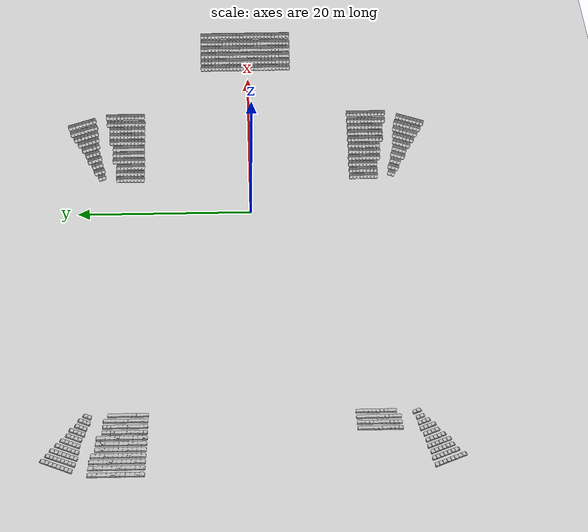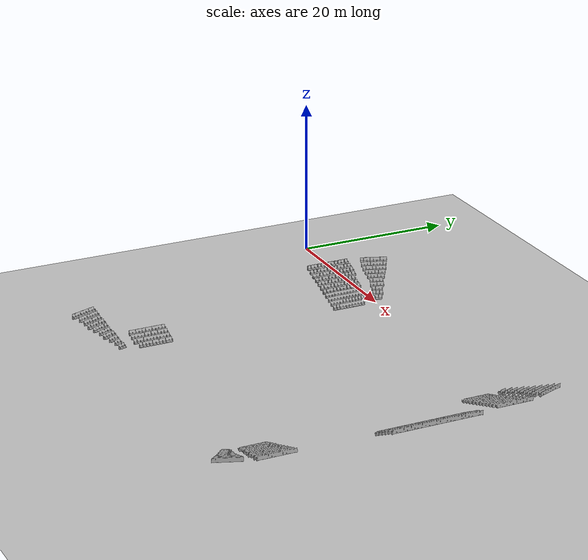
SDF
<sdf version="1.6">
 <world name="wks">
  <include><uri>model://ground_plane</uri><pose>0 0 -19 0 0 0</pose></include>
  <model name="Props_Props_0_F1_yizi_13_0">
   <static>1</static>
   <link name="Props_Props_0_F1_yizi_13_0">
    <pose>1.131485 0.2336953 -19.56981 0 4.712389 0</pose>
    <visual name="Props_Props_0_F1_yizi_13_0">
     <geometry>
      <mesh><uri>worlds/WKS-Gazebo/Props_Props_0_F1_yizi_13_0.stl</uri><scale>1 1 1</scale></mesh>
     </geometry>
     <meta><layer>0</layer></meta>
    </visual>
    <collision name="Props_Props_0_F1_yizi_13_0">
     <geometry>
      <mesh><uri>worlds/WKS-Gazebo/Props_Props_0_F1_yizi_13_0.stl</uri><scale>1 1 1</scale></mesh>
     </geometry>
    </collision>
   </link>
  </model>
  <model name="Props_Props_0_F1_yizi_14_0">
   <static>1</static>
   <link name="Props_Props_0_F1_yizi_14_0">
    <pose>1.131485 0.2336953 -19.56981 0 4.712389 0</pose>
    <visual name="Props_Props_0_F1_yizi_14_0">
     <geometry>
      <mesh><uri>worlds/WKS-Gazebo/Props_Props_0_F1_yizi_14_0.stl</uri><scale>1 1 1</scale></mesh>
     </geometry>
     <meta><layer>0</layer></meta>
    </visual>
    <collision name="Props_Props_0_F1_yizi_14_0">
     <geometry>
      <mesh><uri>worlds/WKS-Gazebo/Props_Props_0_F1_yizi_14_0.stl</uri><scale>1 1 1</scale></mesh>
     </geometry>
    </collision>
   </link>
  </model>
  <model name="Props_Props_0_F1_yizi_15_0">
   <static>1</static>
   <link name="Props_Props_0_F1_yizi_15_0">
    <pose>1.131485 0.2336953 -19.56981 0 4.712389 0</pose>
    <visual name="Props_Props_0_F1_yizi_15_0">
     <geometry>
      <mesh><uri>worlds/WKS-Gazebo/Props_Props_0_F1_yizi_15_0.stl</uri><scale>1 1 1</scale></mesh>
     </geometry>
     <meta><layer>0</layer></meta>
    </visual>
    <collision name="Props_Props_0_F1_yizi_15_0">
     <geometry>
      <mesh><uri>worlds/WKS-Gazebo/Props_Props_0_F1_yizi_15_0.stl</uri><scale>1 1 1</scale></mesh>
     </geometry>
    </collision>
   </link>
  </model>
  <model name="Props_Props_0_F1_yizi_16_0">
   <static>1</static>
   <link name="Props_Props_0_F1_yizi_16_0">
    <pose>1.131485 0.2336953 -19.56981 0 4.712389 0</pose>
    <visual name="Props_Props_0_F1_yizi_16_0">
     <geometry>
      <mesh><uri>worlds/WKS-Gazebo/Props_Props_0_F1_yizi_16_0.stl</uri><scale>1 1 1</scale></mesh>
     </geometry>
     <meta><layer>0</layer></meta>
    </visual>
    <collision name="Props_Props_0_F1_yizi_16_0">
     <geometry>
      <mesh><uri>worlds/WKS-Gazebo/Props_Props_0_F1_yizi_16_0.stl</uri><scale>1 1 1</scale></mesh>
     </geometry>
    </collision>
   </link>
  </model>
  <model name="Props_Props_0_F1_yizi_17_0">
   <static>1</static>
   <link name="Props_Props_0_F1_yizi_17_0">
    <pose>1.131485 0.2336953 -19.56981 0 4.712389 0</pose>
    <visual name="Props_Props_0_F1_yizi_17_0">
     <geometry>
      <mesh><uri>worlds/WKS-Gazebo/Props_Props_0_F1_yizi_17_0.stl</uri><scale>1 1 1</scale></mesh>
     </geometry>
     <meta><layer>0</layer></meta>
    </visual>
    <collision name="Props_Props_0_F1_yizi_17_0">
     <geometry>
      <mesh><uri>worlds/WKS-Gazebo/Props_Props_0_F1_yizi_17_0.stl</uri><scale>1 1 1</scale></mesh>
     </geometry>
    </collision>
   </link>
  </model>
  <model name="Props_Props_0_F1_yizi_18_0">
   <static>1</static>
   <link name="Props_Props_0_F1_yizi_18_0">
    <pose>1.131485 0.2336953 -19.56981 0 4.712389 0</pose>
    <visual name="Props_Props_0_F1_yizi_18_0">
     <geometry>
      <mesh><uri>worlds/WKS-Gazebo/Props_Props_0_F1_yizi_18_0.stl</uri><scale>1 1 1</scale></mesh>
     </geometry>
     <meta><layer>0</layer></meta>
    </visual>
    <collision name="Props_Props_0_F1_yizi_18_0">
     <geometry>
      <mesh><uri>worlds/WKS-Gazebo/Props_Props_0_F1_yizi_18_0.stl</uri><scale>1 1 1</scale></mesh>
     </geometry>
    </collision>
   </link>
  </model>
  <model name="Props_Props_0_F1_yizi_19_0">
   <static>1</static>
   <link name="Props_Props_0_F1_yizi_19_0">
    <pose>1.131485 0.2336953 -19.56981 0 4.712389 0</pose>
    <visual name="Props_Props_0_F1_yizi_19_0">
     <geometry>
      <mesh><uri>worlds/WKS-Gazebo/Props_Props_0_F1_yizi_19_0.stl</uri><scale>1 1 1</scale></mesh>
     </geometry>
     <meta><layer>0</layer></meta>
    </visual>
    <collision name="Props_Props_0_F1_yizi_19_0">
     <geometry>
      <mesh><uri>worlds/WKS-Gazebo/Props_Props_0_F1_yizi_19_0.stl</uri><scale>1 1 1</scale></mesh>
     </geometry>
    </collision>
   </link>
  </model>
  <model name="Props_Props_0_F1_yizi_20_0">
   <static>1</static>
   <link name="Props_Props_0_F1_yizi_20_0">
    <pose>1.131485 0.2336953 -19.56981 0 4.712389 0</pose>
    <visual name="Props_Props_0_F1_yizi_20_0">
     <geometry>
      <mesh><uri>worlds/WKS-Gazebo/Props_Props_0_F1_yizi_20_0.stl</uri><scale>1 1 1</scale></mesh>
     </geometry>
     <meta><layer>0</layer></meta>
    </visual>
    <collision name="Props_Props_0_F1_yizi_20_0">
     <geometry>
      <mesh><uri>worlds/WKS-Gazebo/Props_Props_0_F1_yizi_20_0.stl</uri><scale>1 1 1</scale></mesh>
     </geometry>
    </collision>
   </link>
  </model>
  <model name="Props_Props_0_F2_yizi_01_0">
   <static>1</static>
   <link name="Props_Props_0_F2_yizi_01_0">
    <pose>1.131485 0.2336953 -19.56981 0 4.712389 0</pose>
    <visual name="Props_Props_0_F2_yizi_01_0">
     <geometry>
      <mesh><uri>worlds/WKS-Gazebo/Props_Props_0_F2_yizi_01_0.stl</uri><scale>1 1 1</scale></mesh>
     </geometry>
     <meta><layer>0</layer></meta>
    </visual>
    <collision name="Props_Props_0_F2_yizi_01_0">
     <geometry>
      <mesh><uri>worlds/WKS-Gazebo/Props_Props_0_F2_yizi_01_0.stl</uri><scale>1 1 1</scale></mesh>
     </geometry>
    </collision>
   </link>
  </model>
  <model name="Props_Props_0_F2_yizi_02_0">
   <static>1</static>
   <link name="Props_Props_0_F2_yizi_02_0">
    <pose>1.131485 0.2336953 -19.56981 0 4.712389 0</pose>
    <visual name="Props_Props_0_F2_yizi_02_0">
     <geometry>
      <mesh><uri>worlds/WKS-Gazebo/Props_Props_0_F2_yizi_02_0.stl</uri><scale>1 1 1</scale></mesh>
     </geometry>
     <meta><layer>0</layer></meta>
    </visual>
    <collision name="Props_Props_0_F2_yizi_02_0">
     <geometry>
      <mesh><uri>worlds/WKS-Gazebo/Props_Props_0_F2_yizi_02_0.stl</uri><scale>1 1 1</scale></mesh>
     </geometry>
    </collision>
   </link>
  </model>
 </world>
</sdf>
